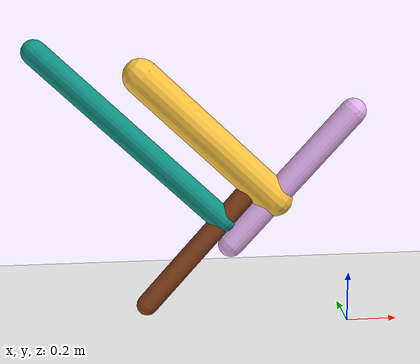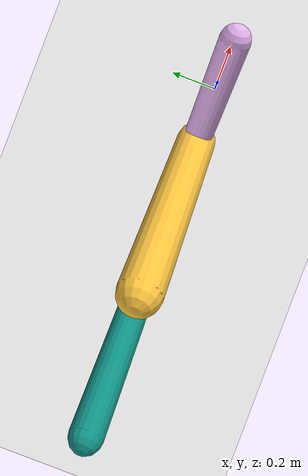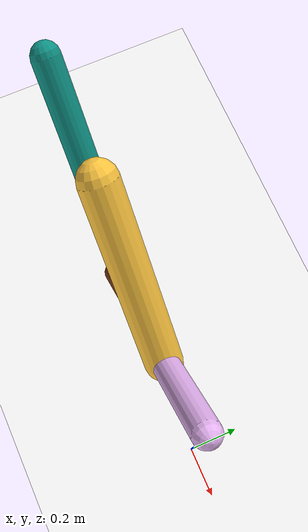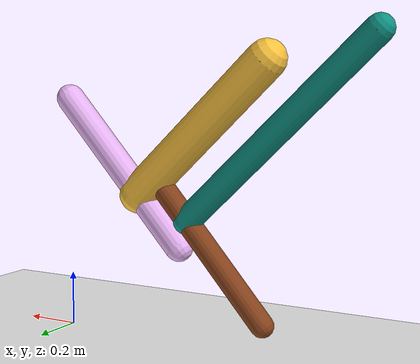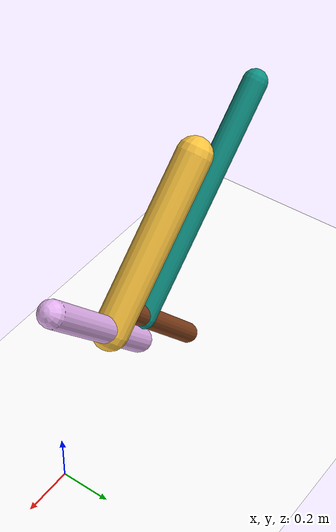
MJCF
<mujoco model="morphology">
  <option timestep="0.01"/>
  <default>
    <default class="/"/>
  </default>
  <asset>
    <texture name="texplane" type="2d" builtin="checker" rgb1="0.1 0.2 0.3" rgb2="0.2 0.3 0.4" width="300" height="300"/>
    <material name="MatPlane" class="/" texture="texplane" texrepeat="20 20" specular="1" shininess="1" reflectance="0.5"/>
  </asset>
  <worldbody>
    <light name="//unnamed_light_0" class="/" directional="true" pos="0 0 1.5" dir="0 0 -1.3" cutoff="1e+02" exponent="1" diffuse="1 1 1" specular="0.1 0.1 0.1"/>
    <geom name="ground" class="/" type="plane" size="15 15 0.5" material="MatPlane" rgba="1 1 1 1"/>
    <body name="body" pos="0 0 0.86">
      <geom name="geom0" class="/" type="capsule" contype="1" conaffinity="1" condim="3" size="0.051" rgba="0.91 0.71 0.96 1" friction="0.4 0.1 0.1" fromto="0 0 0 -0.47 0 -0.52"/>
      <body name="body1" pos="-0.3 0 -0.34">
        <geom name="geom1" class="/" type="capsule" contype="1" conaffinity="1" condim="3" size="0.07" rgba="1 0.78 0.25 1" friction="0.4 0.1 0.1" fromto="0 0 0 -0.51 0 0.49"/>
        <body name="body2" pos="-0.071 0 0.068">
          <geom name="geom2" class="/" type="capsule" contype="1" conaffinity="1" condim="3" size="0.042" rgba="0.53 0.26 0.11 1" friction="0.4 0.1 0.1" fromto="0 0 0 -0.43 0 -0.49"/>
          <body name="body3" pos="-0.13 0 -0.15">
            <geom name="geom3" class="/" type="capsule" contype="1" conaffinity="1" condim="3" size="0.049" rgba="0.057 0.58 0.53 1" friction="0.4 0.1 0.1" fromto="0 0 0 -0.7 0 0.67"/>
            <joint name="joint3" class="/" type="hinge" axis="0 1 0" limited="true" stiffness="20" range="-60 60" armature="0.1" damping="2"/>
          </body>
          <joint name="joint2" class="/" type="hinge" axis="0 1 0" limited="true" stiffness="20" range="-50 50" armature="0.1" damping="2"/>
        </body>
        <joint name="joint1" class="/" type="hinge" axis="0 1 0" limited="true" stiffness="20" range="-31 31" armature="0.1" damping="2"/>
      </body>
      <joint name="rootx" class="/" type="slide" axis="1 0 0" limited="false" stiffness="0" armature="0" damping="0"/>
      <joint name="rootz" class="/" type="slide" axis="0 0 1" limited="false" stiffness="0" armature="0" damping="0"/>
      <joint name="rooty" class="/" type="hinge" axis="0 1 0" limited="false" stiffness="0" armature="0" damping="0"/>
    </body>
  </worldbody>
  <actuator>
    <motor name="motor3" class="/" ctrllimited="true" ctrlrange="-1 1" gear="2e+02" joint="joint3"/>
    <motor name="motor2" class="/" ctrllimited="true" ctrlrange="-1 1" gear="1.8e+02" joint="joint2"/>
    <motor name="motor1" class="/" ctrllimited="true" ctrlrange="-1 1" gear="1.1e+02" joint="joint1"/>
  </actuator>
  <sensor>
    <subtreelinvel name="velocity" body="body"/>
  </sensor>
</mujoco>
